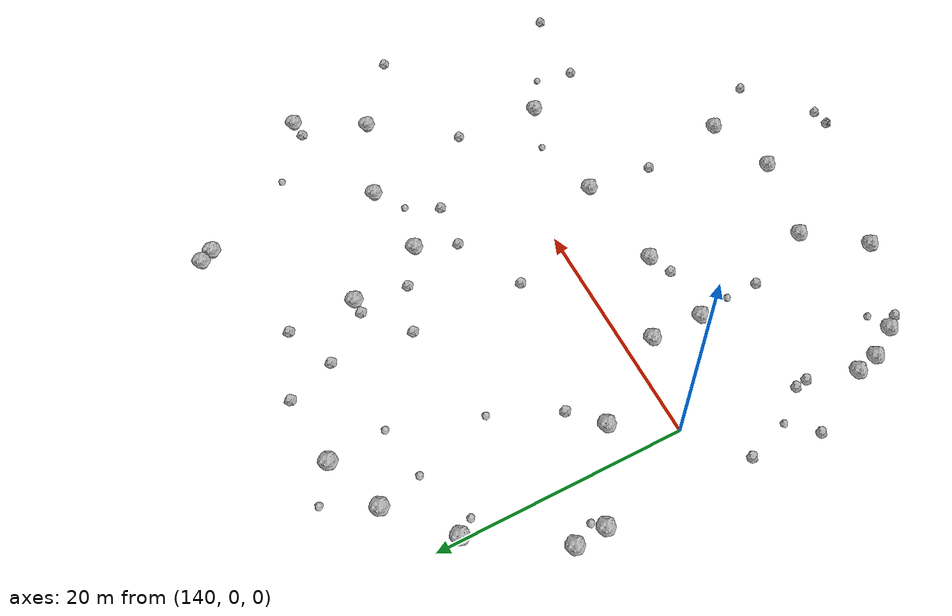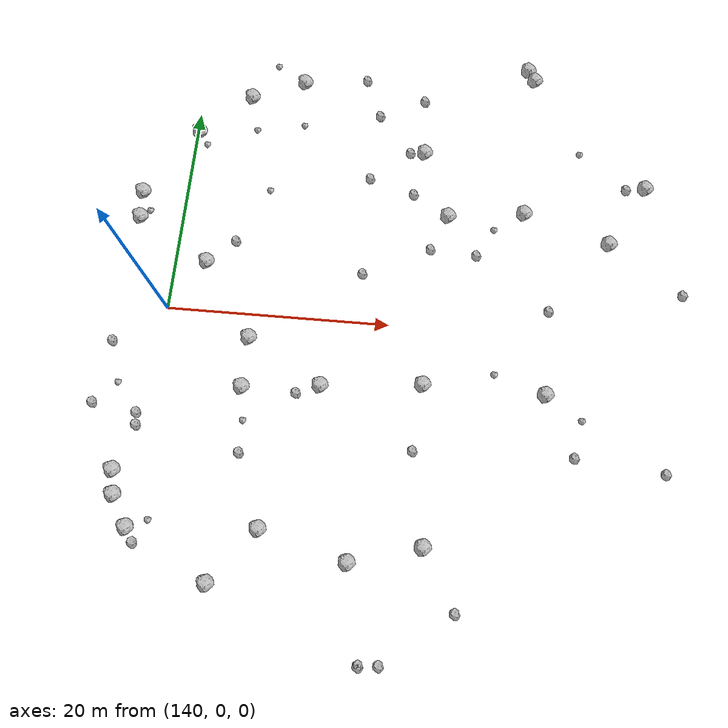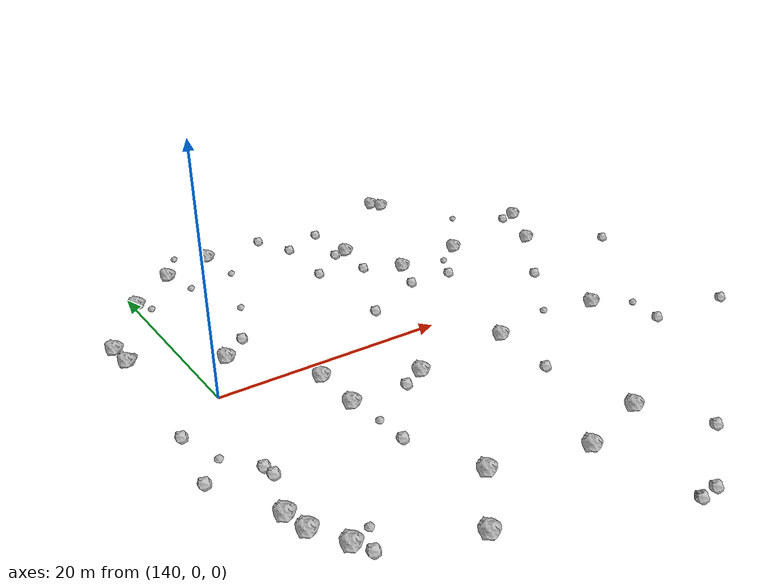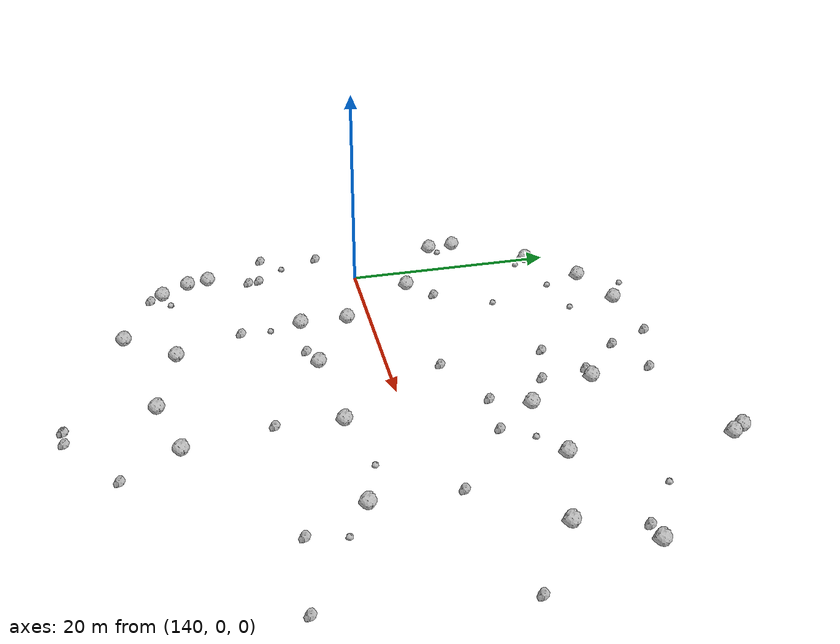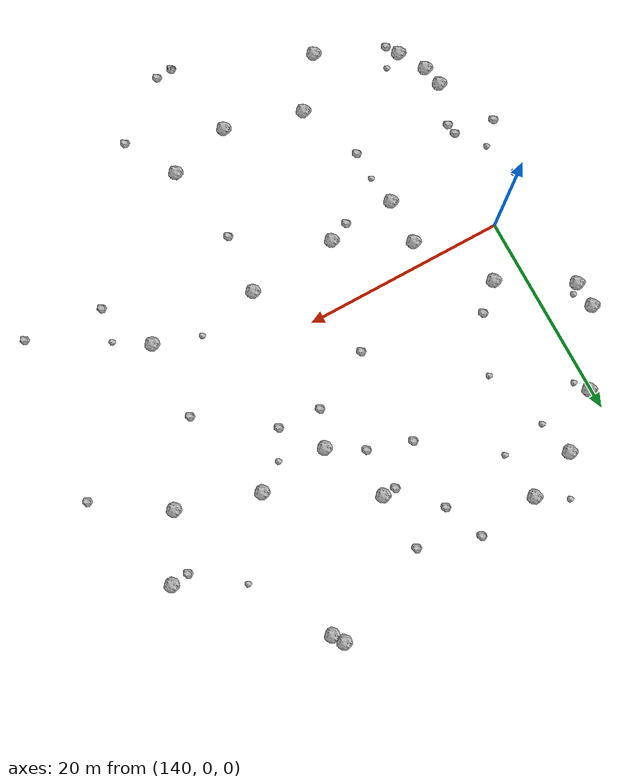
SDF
<sdf version="1.6">
 <world name="default">
  <include><uri>model://sun</uri></include>
  <model name="rock1_4_2">
   <include><uri>model://rock1</uri><pose>147.7224261701025 -2.2297733673685336 0.5 0 0 0</pose></include>
  </model>
  <model name="rock1_4_3">
   <include><uri>model://rock1</uri><pose>164.61304550795126 11.04770894212529 0.5 0 0 0</pose></include>
  </model>
  <model name="rock1_4_4">
   <include><uri>model://rock1</uri><pose>147.03829152832333 -23.38984754523529 0.5 0 0 0</pose></include>
  </model>
  <model name="rock1_4_5">
   <include><uri>model://rock1</uri><pose>138.2307622237045 -16.896039935437976 0.5 0 0 0</pose></include>
  </model>
  <model name="rock1_4_6">
   <include><uri>model://rock1</uri><pose>154.50725624465935 -6.070314438077187 0.5 0 0 0</pose></include>
  </model>
  <model name="rock1_4_7">
   <include><uri>model://rock1</uri><pose>142.90952169209166 4.700583778614224 0.5 0 0 0</pose></include>
  </model>
  <model name="rock1_4_8">
   <include><uri>model://rock1</uri><pose>171.6411876749701 11.898643131105132 0.5 0 0 0</pose></include>
  </model>
  <model name="rock1_4_9">
   <include><uri>model://rock1</uri><pose>149.77039038682304 24.270211237793653 0.5 0 0 0</pose></include>
  </model>
  <model name="rock1_4_10">
   <include><uri>model://rock1</uri><pose>139.75100983587893 -19.486433066346144 0.5 0 0 0</pose></include>
  </model>
  <model name="rock1_4_11">
   <include><uri>model://rock1</uri><pose>182.8721927128612 15.407626858667463 0.5 0 0 0</pose></include>
  </model>
  <model name="rock1_4_12">
   <include><uri>model://rock1</uri><pose>161.97920397444392 17.490138116673336 0.5 0 0 0</pose></include>
  </model>
  <model name="rock1_4_13">
   <include><uri>model://rock1</uri><pose>147.68676336685954 -6.75486438762346 0.5 0 0 0</pose></include>
  </model>
  <model name="rock1_4_14">
   <include><uri>model://rock1</uri><pose>164.44908413134738 -19.103818024946456 0.5 0 0 0</pose></include>
  </model>
  <model name="rock1_4_15">
   <include><uri>model://rock1</uri><pose>136.11216026496842 8.672598508917176 0.5 0 0 0</pose></include>
  </model>
  <model name="rock1_4_16">
   <include><uri>model://rock1</uri><pose>158.33228013390516 -20.812996693186655 0.5 0 0 0</pose></include>
  </model>
  <model name="rock1_4_17">
   <include><uri>model://rock1</uri><pose>174.13934007661985 -5.3205125699804725 0.5 0 0 0</pose></include>
  </model>
  <model name="rock1_4_18">
   <include><uri>model://rock1</uri><pose>172.17783570038932 26.350269929800533 0.5 0 0 0</pose></include>
  </model>
  <model name="rock1_4_19">
   <include><uri>model://rock1</uri><pose>150.71858421228853 -18.71610211237482 0.5 0 0 0</pose></include>
  </model>
  <model name="rock1_4_20">
   <include><uri>model://rock1</uri><pose>171.50398697080394 27.430445662760576 0.5 0 0 0</pose></include>
  </model>
  <model name="rock1_4_21">
   <include><uri>model://rock1</uri><pose>140.27507973030052 18.04349745505798 0.5 0 0 0</pose></include>
  </model>
  <model name="rock1_4_22">
   <include><uri>model://rock1</uri><pose>135.94875231601276 11.235731662892277 0.5 0 0 0</pose></include>
  </model>
  <model name="rock1_4_23">
   <include><uri>model://rock1</uri><pose>179.52905715396435 9.445029290232661 0.5 0 0 0</pose></include>
  </model>
  <model name="rock1_4_24">
   <include><uri>model://rock1</uri><pose>144.837846307878 22.23055322699173 0.5 0 0 0</pose></include>
  </model>
  <model name="rock1_4_25">
   <include><uri>model://rock1</uri><pose>137.79833512621738 -14.858172081430673 0.5 0 0 0</pose></include>
  </model>
  <model name="rock1_4_26">
   <include><uri>model://rock1</uri><pose>163.42589335631914 -5.263296445026711 0.5 0 0 0</pose></include>
  </model>
  <model name="rock2_4_0">
   <include><uri>model://rock2</uri><pose>162.9554420642417 -11.17009836789859 0.3 0 0 0</pose></include>
  </model>
  <model name="rock2_4_1">
   <include><uri>model://rock2</uri><pose>134.91666179185108 -9.193151981828908 0.3 0 0 0</pose></include>
  </model>
  <model name="rock2_4_2">
   <include><uri>model://rock2</uri><pose>161.24693212742673 13.069410459797332 0.3 0 0 0</pose></include>
  </model>
  <model name="rock2_4_3">
   <include><uri>model://rock2</uri><pose>159.96747194811425 -28.657091943860735 0.3 0 0 0</pose></include>
  </model>
  <model name="rock2_4_4">
   <include><uri>model://rock2</uri><pose>138.88386497806036 -9.777426357752692 0.3 0 0 0</pose></include>
  </model>
  <model name="rock2_4_5">
   <include><uri>model://rock2</uri><pose>181.09235579825838 15.20299326159337 0.3 0 0 0</pose></include>
  </model>
  <model name="rock2_4_6">
   <include><uri>model://rock2</uri><pose>157.19506074265433 4.6874559013309 0.3 0 0 0</pose></include>
  </model>
  <model name="rock2_4_7">
   <include><uri>model://rock2</uri><pose>157.3944931205748 21.211113029324878 0.3 0 0 0</pose></include>
  </model>
  <model name="rock2_4_8">
   <include><uri>model://rock2</uri><pose>145.2812655523105 6.950697375317645 0.3 0 0 0</pose></include>
  </model>
  <model name="rock2_4_9">
   <include><uri>model://rock2</uri><pose>186.2138090664964 4.959432157765761 0.3 0 0 0</pose></include>
  </model>
  <model name="rock2_4_10">
   <include><uri>model://rock2</uri><pose>161.5855067530617 23.19405250660958 0.3 0 0 0</pose></include>
  </model>
  <model name="rock2_4_11">
   <include><uri>model://rock2</uri><pose>160.6176818048054 17.431095394624116 0.3 0 0 0</pose></include>
  </model>
  <model name="rock2_4_12">
   <include><uri>model://rock2</uri><pose>152.44953038641978 -6.908509982873163 0.3 0 0 0</pose></include>
  </model>
  <model name="rock2_4_13">
   <include><uri>model://rock2</uri><pose>155.77803133173757 25.077668936403718 0.3 0 0 0</pose></include>
  </model>
  <model name="rock2_4_14">
   <include><uri>model://rock2</uri><pose>157.02194604827895 14.402243974229265 0.3 0 0 0</pose></include>
  </model>
  <model name="rock2_4_15">
   <include><uri>model://rock2</uri><pose>148.19689439310426 -12.521902260031581 0.3 0 0 0</pose></include>
  </model>
  <model name="rock2_4_16">
   <include><uri>model://rock2</uri><pose>167.3849703869364 -24.111556716979763 0.3 0 0 0</pose></include>
  </model>
  <model name="rock2_4_17">
   <include><uri>model://rock2</uri><pose>176.7597586569116 -10.658325858394246 0.3 0 0 0</pose></include>
  </model>
  <model name="rock2_4_18">
   <include><uri>model://rock2</uri><pose>163.20493820622355 7.607683892473091 0.3 0 0 0</pose></include>
  </model>
  <model name="rock2_4_19">
   <include><uri>model://rock2</uri><pose>174.19933794719276 2.444014641251812 0.3 0 0 0</pose></include>
  </model>
  <model name="rock2_4_20">
   <include><uri>model://rock2</uri><pose>159.9547432800787 -28.69454292187455 0.3 0 0 0</pose></include>
  </model>
  <model name="rock2_4_21">
   <include><uri>model://rock2</uri><pose>161.58161447920088 -28.544338473003698 0.3 0 0 0</pose></include>
  </model>
  <model name="rock2_4_22">
   <include><uri>model://rock2</uri><pose>140.4587096761689 -20.682221665617647 0.3 0 0 0</pose></include>
  </model>
  <model name="rock2_4_23">
   <include><uri>model://rock2</uri><pose>135.6780511225148 -3.489398288272124 0.3 0 0 0</pose></include>
  </model>
  <model name="rock2_4_24">
   <include><uri>model://rock2</uri><pose>139.03969549464497 -10.85063214842052 0.3 0 0 0</pose></include>
  </model>
  <model name="rock2_4_25">
   <include><uri>model://rock2</uri><pose>167.424637640761 7.339378832580607 0.3 0 0 0</pose></include>
  </model>
  <model name="rock2_4_26">
   <include><uri>model://rock2</uri><pose>184.51929684856725 -11.408559648074473 0.3 0 0 0</pose></include>
  </model>
  <model name="rock3_4_0">
   <include><uri>model://rock3</uri><pose>147.75364483838462 12.400109397166126 0.2 0 0 0</pose></include>
  </model>
  <model name="rock3_4_1">
   <include><uri>model://rock3</uri><pose>146.88855854097267 26.023706753696345 0.2 0 0 0</pose></include>
  </model>
  <model name="rock3_4_2">
   <include><uri>model://rock3</uri><pose>141.40635956097086 -18.768018634134794 0.2 0 0 0</pose></include>
  </model>
  <model name="rock3_4_3">
   <include><uri>model://rock3</uri><pose>177.34104585287022 -7.3573903803777405 0.2 0 0 0</pose></include>
  </model>
  <model name="rock3_4_4">
   <include><uri>model://rock3</uri><pose>136.8053766231342 -7.22549866626294 0.2 0 0 0</pose></include>
  </model>
  <model name="rock3_4_5">
   <include><uri>model://rock3</uri><pose>141.10455575083233 16.777560946135374 0.2 0 0 0</pose></include>
  </model>
  <model name="rock3_4_6">
   <include><uri>model://rock3</uri><pose>168.911723281734 10.059359131439521 0.2 0 0 0</pose></include>
  </model>
  <model name="rock3_4_7">
   <include><uri>model://rock3</uri><pose>136.83630809035304 9.415731345525046 0.2 0 0 0</pose></include>
  </model>
  <model name="rock3_4_8">
   <include><uri>model://rock3</uri><pose>176.6698865669875 18.624425123132923 0.2 0 0 0</pose></include>
  </model>
  <model name="rock3_4_9">
   <include><uri>model://rock3</uri><pose>169.59794188240372 -3.84189419592596 0.2 0 0 0</pose></include>
  </model>
  <model name="rock3_4_10">
   <include><uri>model://rock3</uri><pose>145.68320338518575 18.72923536327542 0.2 0 0 0</pose></include>
  </model>
  <model name="rock3_4_11">
   <include><uri>model://rock3</uri><pose>148.14072047913106 -9.712065902944218 0.2 0 0 0</pose></include>
  </model>
  <model name="rock3_4_12">
   <include><uri>model://rock3</uri><pose>150.1752885780997 19.59315936447331 0.2 0 0 0</pose></include>
  </model>
 </world>
</sdf>
